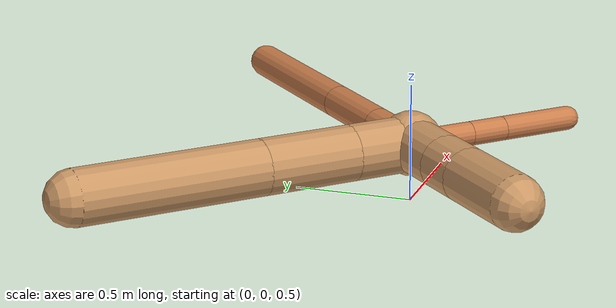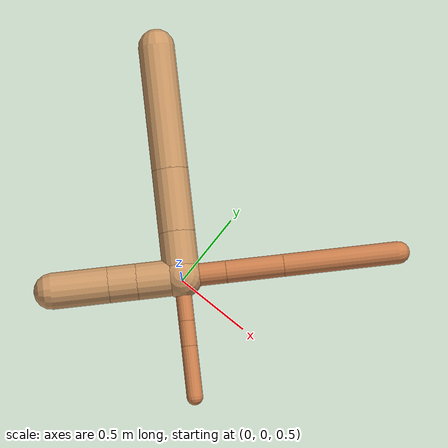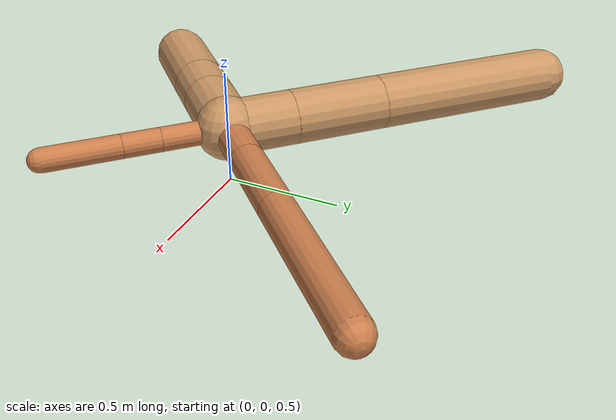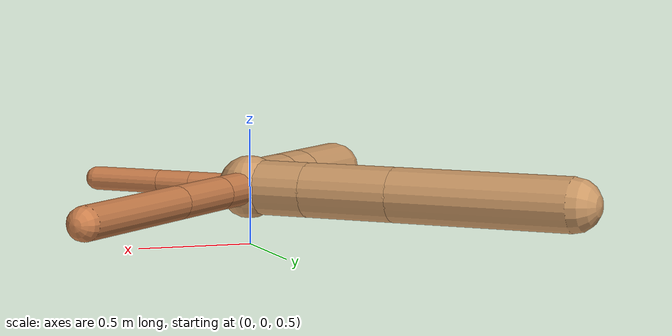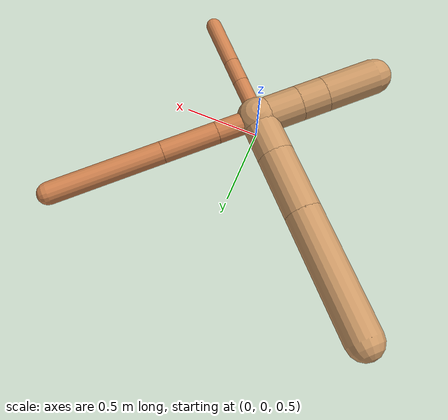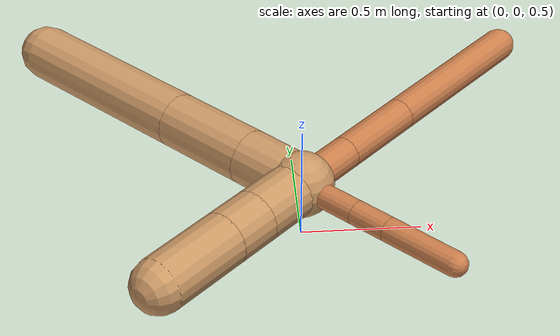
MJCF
<?xml version="1.0" ?>
<mujoco model="ant">

	<compiler angle="degree" coordinate="local" inertiafromgeom="true"/>

	<option integrator="RK4" timestep="0.01"/>

	<custom>

		<numeric data="0.0 0.0 0.55 1.0 0.0 0.0 0.0 0.0 1.0 0.0 -1.0 0.0 -1.0 0.0 1.0" name="init_qpos"/>

	</custom>

	<default>

		<joint armature="1" damping="1" limited="true"/>

		<geom conaffinity="0" condim="3" density="5.0" friction="1.5 0.1 0.1" margin="0.01" rgba="0.8 0.6 0.4 1"/>

	</default>

	<worldbody>

		<body name="torso" pos="0 0 0.75">

			<geom name="torso_geom" pos="0 0 0" size="0.1364047679194504" type="sphere"/>

			<!--joint armature="0" damping="0" limited="false" margin="0.01" name="root" pos="0 0 0" type="free"/-->

			<body name="front_left_leg" pos="0 0 0">

				<geom fromto="0 0 0 0.2 0.2 0" name="aux_1_geom" size="0.07196663569187865" type="capsule" rgba=".8 .5 .3 1"/>

				<body name="aux_1" pos="0.2 0.2 0">

					<joint axis="0 0 1" name="hip_1" pos="0.0 0.0 0.0" range="-40 40" type="hinge"/>

					<geom fromto="0 0 0 0.25940401314324624 0.25940401314324624 0" name="left_leg_geom" size="0.07196663569187865" type="capsule" rgba=".8 .5 .3 1"/>

					<body pos="0.25940401314324624 0.25940401314324624 0" name="front_left_foot">

						<joint axis="-1 1 0" name="ankle_1" pos="0.0 0.0 0.0" range="30 100" type="hinge"/>

						<geom fromto="0 0 0 0.5188080262864925 0.5188080262864925 0" name="left_ankle_geom" size="0.07196663569187865" type="capsule" rgba=".8 .5 .3 1"/>

					</body>

				</body>

			</body>

			<body name="front_right_leg" pos="0 0 0">

				<geom fromto="0 0 0 -0.2 0.2 0" name="aux_2_geom" size="0.11817543424280853" type="capsule"/>

				<body name="aux_2" pos="-0.2 0.2 0">

					<joint axis="0 0 1" name="hip_2" pos="0.0 0.0 0.0" range="-40 40" type="hinge"/>

					<geom fromto="0 0 0 -0.2859834772810817 0.2859834772810817 0" name="right_leg_geom" size="0.11817543424280853" type="capsule"/>

					<body pos="-0.2859834772810817 0.2859834772810817 0" name="front_right_foot">

						<joint axis="1 1 0" name="ankle_2" pos="0.0 0.0 0.0" range="-100 -30" type="hinge"/>

						<geom fromto="0 0 0 -0.5719669545621634 0.5719669545621634 0" name="right_ankle_geom" size="0.11817543424280853" type="capsule"/>

					</body>

				</body>

			</body>

			<body name="left_back_leg" pos="0 0 0">

				<geom fromto="0 0 0 -0.2 -0.2 0" name="aux_3_geom" size="0.11623688151889112" type="capsule"/>

				<body name="aux_3" pos="-0.2 -0.2 0">

					<joint axis="0 0 1" name="hip_3" pos="0.0 0.0 0.0" range="-40 40" type="hinge"/>

					<geom fromto="0 0 0 -0.12816757048784344 -0.12816757048784344 0" name="back_leg_geom" size="0.11623688151889112" type="capsule"/>

					<body pos="-0.12816757048784344 -0.12816757048784344 0" name="left_back_foot">

						<joint axis="-1 1 0" name="ankle_3" pos="0.0 0.0 0.0" range="-100 -30" type="hinge"/>

						<geom fromto="0 0 0 -0.2563351409756869 -0.2563351409756869 0" name="third_ankle_geom" size="0.11623688151889112" type="capsule"/>

					</body>

				</body>

			</body>

			<body name="right_back_leg" pos="0 0 0">

				<geom fromto="0 0 0 0.2 -0.2 0" name="aux_4_geom" size="0.051679099639897745" type="capsule" rgba=".8 .5 .3 1"/>

				<body name="aux_4" pos="0.2 -0.2 0">

					<joint axis="0 0 1" name="hip_4" pos="0.0 0.0 0.0" range="-40 40" type="hinge"/>

					<geom fromto="0 0 0 0.1134926615596112 -0.1134926615596112 0" name="rightback_leg_geom" size="0.051679099639897745" type="capsule" rgba=".8 .5 .3 1"/>

					<body pos="0.1134926615596112 -0.1134926615596112 0" name="right_back_foot">

						<joint axis="1 1 0" name="ankle_4" pos="0.0 0.0 0.0" range="30 100" type="hinge"/>

						<geom fromto="0 0 0 0.2269853231192224 -0.2269853231192224 0" name="fourth_ankle_geom" size="0.051679099639897745" type="capsule" rgba=".8 .5 .3 1"/>

					</body>

				</body>

			</body>

		</body>

	</worldbody>

	<actuator>

		<motor ctrllimited="true" ctrlrange="-1.0 1.0" joint="hip_4" gear="150"/>

		<motor ctrllimited="true" ctrlrange="-1.0 1.0" joint="ankle_4" gear="150"/>

		<motor ctrllimited="true" ctrlrange="-1.0 1.0" joint="hip_1" gear="150"/>

		<motor ctrllimited="true" ctrlrange="-1.0 1.0" joint="ankle_1" gear="150"/>

		<motor ctrllimited="true" ctrlrange="-1.0 1.0" joint="hip_2" gear="150"/>

		<motor ctrllimited="true" ctrlrange="-1.0 1.0" joint="ankle_2" gear="150"/>

		<motor ctrllimited="true" ctrlrange="-1.0 1.0" joint="hip_3" gear="150"/>

		<motor ctrllimited="true" ctrlrange="-1.0 1.0" joint="ankle_3" gear="150"/>

	</actuator>

</mujoco>
